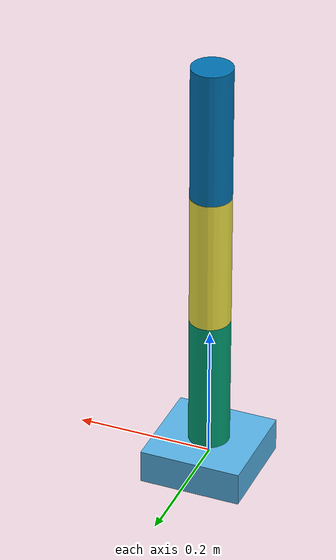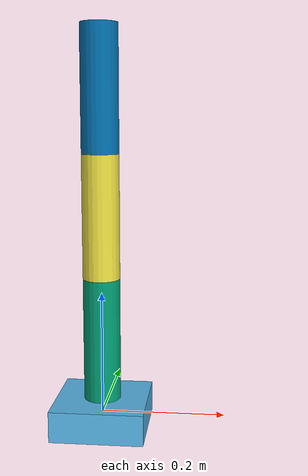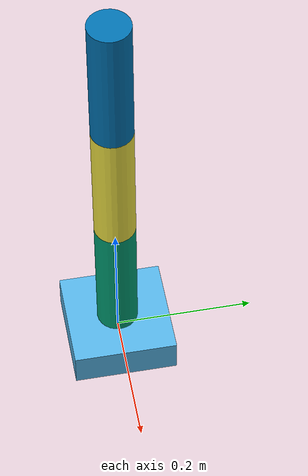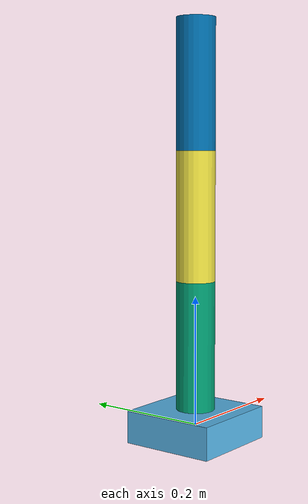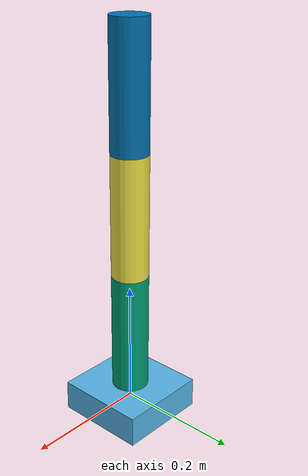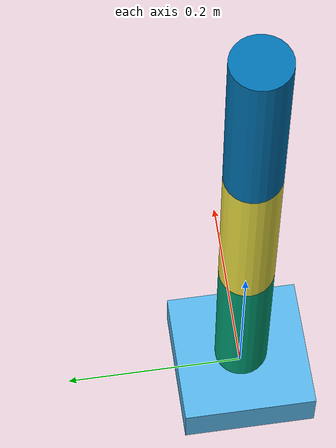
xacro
<?xml version="1.0"?>
<!--
  Descripción mínima de 3 articulaciones rotacionales para el Movemaster.
  La geometría es provisional: sustituir por las medidas/mallas reales.
-->
<robot name="movemaster" xmlns:xacro="http://www.ros.org/wiki/xacro">

  <xacro:arg name="use_mock_hardware" default="false"/>
  <xacro:arg name="can_interface" default="can0"/>

  <xacro:include filename="$(find movemaster_hardware)/description/urdf/movemaster.ros2_control.xacro"/>

  <xacro:property name="link_length" value="0.20"/>
  <xacro:property name="link_radius" value="0.03"/>

  <xacro:macro name="arm_link" params="name">
    <link name="${name}">
      <visual>
        <origin xyz="0 0 ${link_length / 2}"/>
        <geometry><cylinder length="${link_length}" radius="${link_radius}"/></geometry>
      </visual>
      <collision>
        <origin xyz="0 0 ${link_length / 2}"/>
        <geometry><cylinder length="${link_length}" radius="${link_radius}"/></geometry>
      </collision>
      <inertial>
        <origin xyz="0 0 ${link_length / 2}"/>
        <mass value="0.5"/>
        <inertia ixx="0.002" ixy="0" ixz="0" iyy="0.002" iyz="0" izz="0.0003"/>
      </inertial>
    </link>
  </xacro:macro>

  <link name="world"/>
  <link name="base_link">
    <visual><geometry><box size="0.15 0.15 0.05"/></geometry></visual>
  </link>
  <joint name="world_to_base" type="fixed">
    <parent link="world"/>
    <child link="base_link"/>
  </joint>

  <xacro:arm_link name="link_1"/>
  <xacro:arm_link name="link_2"/>
  <xacro:arm_link name="link_3"/>

  <joint name="joint_1" type="revolute">
    <parent link="base_link"/>
    <child link="link_1"/>
    <origin xyz="0 0 0.025"/>
    <axis xyz="0 0 1"/>
    <limit lower="${-pi}" upper="${pi}" effort="50" velocity="1.0"/>
  </joint>
  <joint name="joint_2" type="revolute">
    <parent link="link_1"/>
    <child link="link_2"/>
    <origin xyz="0 0 ${link_length}"/>
    <axis xyz="0 1 0"/>
    <limit lower="${-pi}" upper="${pi}" effort="50" velocity="1.0"/>
  </joint>
  <joint name="joint_3" type="revolute">
    <parent link="link_2"/>
    <child link="link_3"/>
    <origin xyz="0 0 ${link_length}"/>
    <axis xyz="0 1 0"/>
    <limit lower="${-pi}" upper="${pi}" effort="50" velocity="1.0"/>
  </joint>

  <xacro:movemaster_ros2_control name="MovemasterSystem"
    use_mock_hardware="$(arg use_mock_hardware)" can_interface="$(arg can_interface)"/>

</robot>
